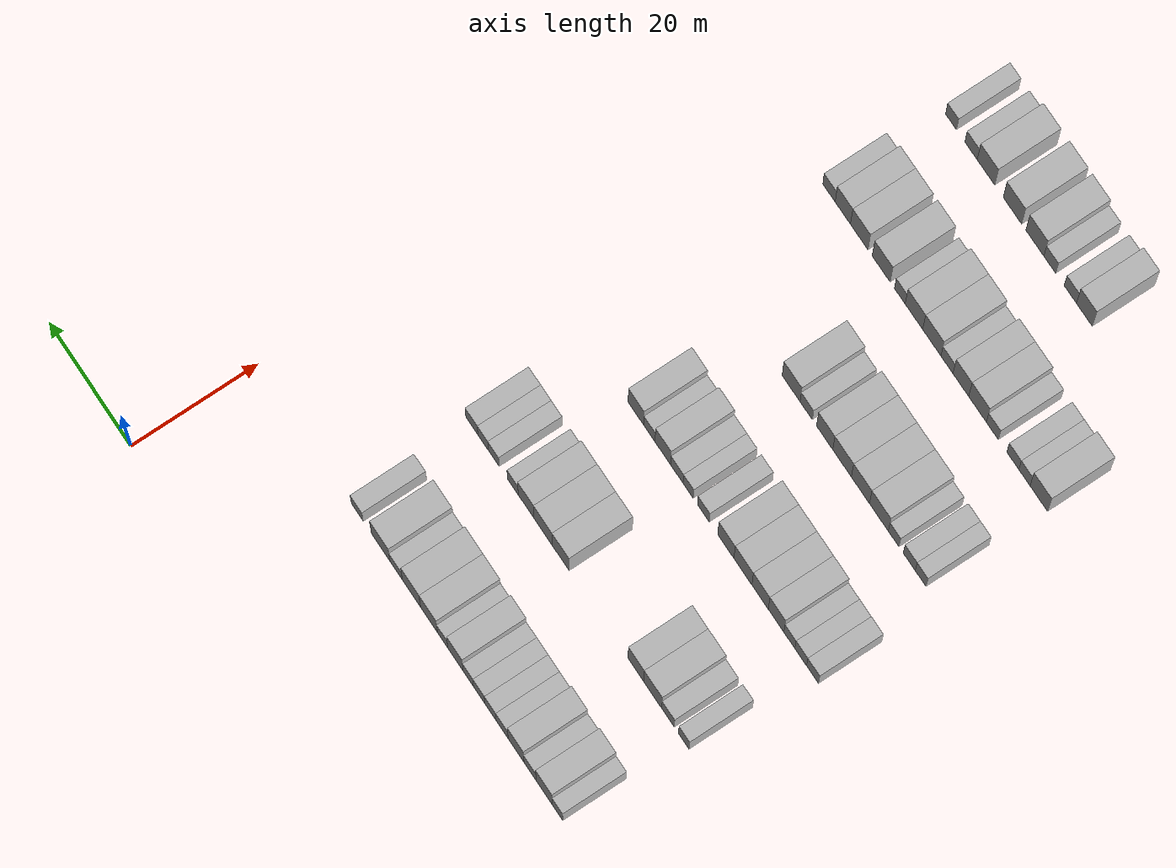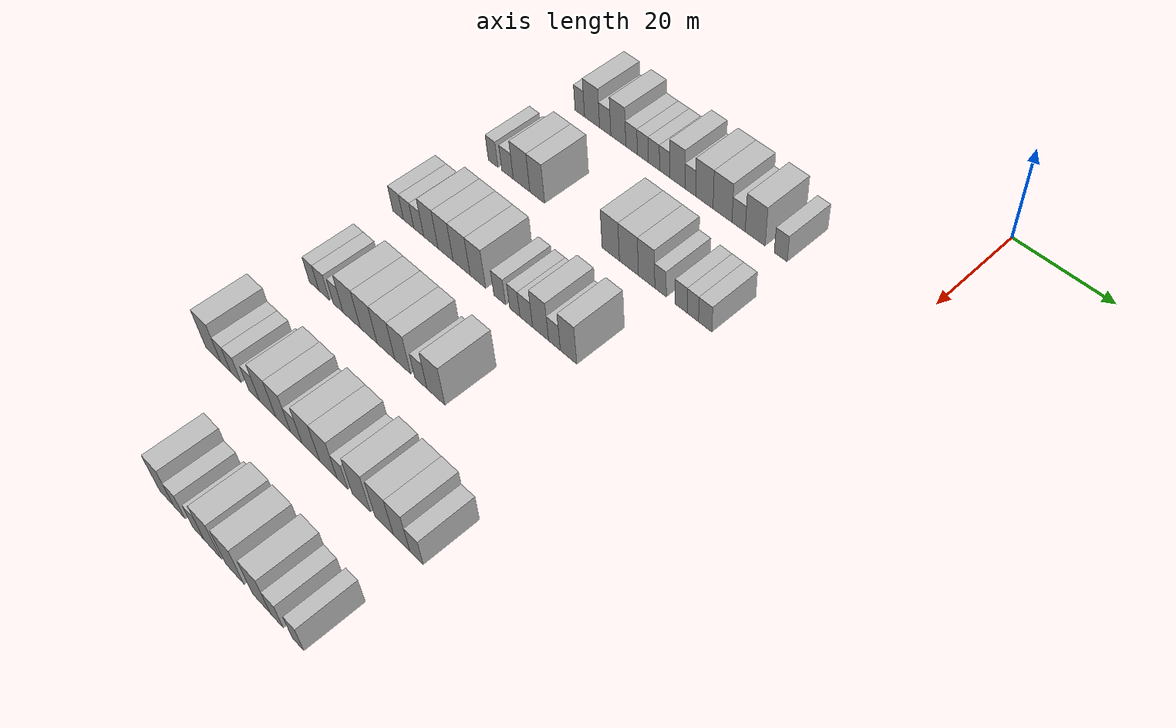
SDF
<sdf version="1.6">
 <world name="default">
  <model name="building_70">
   <static>1</static>
   <pose>25.0000 -71.9398 0 0.000000 0.000000 0.000000</pose>
   <link name="link">
    <pose>0 0 3.00 0 0 0</pose>
    <collision name="collision"><geometry><box><size>10.0000 2.4733 6.0000</size></box></geometry></collision>
    <visual name="visual">
     <cast_shadows>0</cast_shadows>
     <geometry><box><size>10.0000 2.4733 6.0000</size></box></geometry>
     <material>
      <script>
       <uri>model://HANNAS_wall/materials/scripts</uri>
       <uri>model://HANNAS_wall/materials/textures</uri>
       <name>vrc/HANNAS_wall</name>
      </script>
     </material>
    </visual>
   </link>
  </model>
  <model name="building_71">
   <static>1</static>
   <pose>25.0000 -68.7679 0 0.000000 0.000000 0.000000</pose>
   <link name="link">
    <pose>0 0 4.50 0 0 0</pose>
    <collision name="collision"><geometry><box><size>10.0000 3.8706 9.0000</size></box></geometry></collision>
    <visual name="visual">
     <cast_shadows>0</cast_shadows>
     <geometry><box><size>10.0000 3.8706 9.0000</size></box></geometry>
     <material>
      <script>
       <uri>model://HANNAS_wall/materials/scripts</uri>
       <uri>model://HANNAS_wall/materials/textures</uri>
       <name>vrc/HANNAS_wall</name>
      </script>
     </material>
    </visual>
   </link>
  </model>
  <model name="building_72">
   <static>1</static>
   <pose>25.0000 -65.4041 0 0.000000 0.000000 0.000000</pose>
   <link name="link">
    <pose>0 0 3.00 0 0 0</pose>
    <collision name="collision"><geometry><box><size>10.0000 2.8571 6.0000</size></box></geometry></collision>
    <visual name="visual">
     <cast_shadows>0</cast_shadows>
     <geometry><box><size>10.0000 2.8571 6.0000</size></box></geometry>
     <material>
      <script>
       <uri>model://HANNAS_wall/materials/scripts</uri>
       <uri>model://HANNAS_wall/materials/textures</uri>
       <name>vrc/HANNAS_wall</name>
      </script>
     </material>
    </visual>
   </link>
  </model>
  <model name="building_73">
   <static>1</static>
   <pose>25.0000 -62.0879 0 0.000000 0.000000 0.000000</pose>
   <link name="link">
    <pose>0 0 4.50 0 0 0</pose>
    <collision name="collision"><geometry><box><size>10.0000 3.7752 9.0000</size></box></geometry></collision>
    <visual name="visual">
     <cast_shadows>0</cast_shadows>
     <geometry><box><size>10.0000 3.7752 9.0000</size></box></geometry>
     <material>
      <script>
       <uri>model://HANNAS_wall/materials/scripts</uri>
       <uri>model://HANNAS_wall/materials/textures</uri>
       <name>vrc/HANNAS_wall</name>
      </script>
     </material>
    </visual>
   </link>
  </model>
  <model name="building_74">
   <static>1</static>
   <pose>25.0000 -58.7655 0 0.000000 0.000000 0.000000</pose>
   <link name="link">
    <pose>0 0 3.00 0 0 0</pose>
    <collision name="collision"><geometry><box><size>10.0000 2.8698 6.0000</size></box></geometry></collision>
    <visual name="visual">
     <cast_shadows>0</cast_shadows>
     <geometry><box><size>10.0000 2.8698 6.0000</size></box></geometry>
     <material>
      <script>
       <uri>model://HANNAS_wall/materials/scripts</uri>
       <uri>model://HANNAS_wall/materials/textures</uri>
       <name>vrc/HANNAS_wall</name>
      </script>
     </material>
    </visual>
   </link>
  </model>
  <model name="building_75">
   <static>1</static>
   <pose>25.0000 -55.9887 0 0.000000 0.000000 0.000000</pose>
   <link name="link">
    <pose>0 0 3.00 0 0 0</pose>
    <collision name="collision"><geometry><box><size>10.0000 2.6839 6.0000</size></box></geometry></collision>
    <visual name="visual">
     <cast_shadows>0</cast_shadows>
     <geometry><box><size>10.0000 2.6839 6.0000</size></box></geometry>
     <material>
      <script>
       <uri>model://HANNAS_wall/materials/scripts</uri>
       <uri>model://HANNAS_wall/materials/textures</uri>
       <name>vrc/HANNAS_wall</name>
      </script>
     </material>
    </visual>
   </link>
  </model>
  <model name="building_76">
   <static>1</static>
   <pose>25.0000 -53.2830 0 0.000000 0.000000 0.000000</pose>
   <link name="link">
    <pose>0 0 3.00 0 0 0</pose>
    <collision name="collision"><geometry><box><size>10.0000 2.7275 6.0000</size></box></geometry></collision>
    <visual name="visual">
     <cast_shadows>0</cast_shadows>
     <geometry><box><size>10.0000 2.7275 6.0000</size></box></geometry>
     <material>
      <script>
       <uri>model://HANNAS_wall/materials/scripts</uri>
       <uri>model://HANNAS_wall/materials/textures</uri>
       <name>vrc/HANNAS_wall</name>
      </script>
     </material>
    </visual>
   </link>
  </model>
  <model name="building_77">
   <static>1</static>
   <pose>25.0000 -50.6937 0 0.000000 0.000000 0.000000</pose>
   <link name="link">
    <pose>0 0 3.00 0 0 0</pose>
    <collision name="collision"><geometry><box><size>10.0000 2.4512 6.0000</size></box></geometry></collision>
    <visual name="visual">
     <cast_shadows>0</cast_shadows>
     <geometry><box><size>10.0000 2.4512 6.0000</size></box></geometry>
     <material>
      <script>
       <uri>model://HANNAS_wall/materials/scripts</uri>
       <uri>model://HANNAS_wall/materials/textures</uri>
       <name>vrc/HANNAS_wall</name>
      </script>
     </material>
    </visual>
   </link>
  </model>
  <model name="building_78">
   <static>1</static>
   <pose>25.0000 -47.6347 0 0.000000 0.000000 0.000000</pose>
   <link name="link">
    <pose>0 0 4.50 0 0 0</pose>
    <collision name="collision"><geometry><box><size>10.0000 3.6666 9.0000</size></box></geometry></collision>
    <visual name="visual">
     <cast_shadows>0</cast_shadows>
     <geometry><box><size>10.0000 3.6666 9.0000</size></box></geometry>
     <material>
      <script>
       <uri>model://HANNAS_wall/materials/scripts</uri>
       <uri>model://HANNAS_wall/materials/textures</uri>
       <name>vrc/HANNAS_wall</name>
      </script>
     </material>
    </visual>
   </link>
  </model>
  <model name="building_79">
   <static>1</static>
   <pose>25.0000 -44.5523 0 0.000000 0.000000 0.000000</pose>
   <link name="link">
    <pose>0 0 3.00 0 0 0</pose>
    <collision name="collision"><geometry><box><size>10.0000 2.4983 6.0000</size></box></geometry></collision>
    <visual name="visual">
     <cast_shadows>0</cast_shadows>
     <geometry><box><size>10.0000 2.4983 6.0000</size></box></geometry>
     <material>
      <script>
       <uri>model://HANNAS_wall/materials/scripts</uri>
       <uri>model://HANNAS_wall/materials/textures</uri>
       <name>vrc/HANNAS_wall</name>
      </script>
     </material>
    </visual>
   </link>
  </model>
  <model name="building_80">
   <static>1</static>
   <pose>25.0000 -41.2727 0 0.000000 0.000000 0.000000</pose>
   <link name="link">
    <pose>0 0 4.50 0 0 0</pose>
    <collision name="collision"><geometry><box><size>10.0000 4.0609 9.0000</size></box></geometry></collision>
    <visual name="visual">
     <cast_shadows>0</cast_shadows>
     <geometry><box><size>10.0000 4.0609 9.0000</size></box></geometry>
     <material>
      <script>
       <uri>model://HANNAS_wall/materials/scripts</uri>
       <uri>model://HANNAS_wall/materials/textures</uri>
       <name>vrc/HANNAS_wall</name>
      </script>
     </material>
    </visual>
   </link>
  </model>
  <model name="building_81">
   <static>1</static>
   <pose>25.0000 -37.0720 0 0.000000 0.000000 0.000000</pose>
   <link name="link">
    <pose>0 0 4.50 0 0 0</pose>
    <collision name="collision"><geometry><box><size>10.0000 4.3405 9.0000</size></box></geometry></collision>
    <visual name="visual">
     <cast_shadows>0</cast_shadows>
     <geometry><box><size>10.0000 4.3405 9.0000</size></box></geometry>
     <material>
      <script>
       <uri>model://HANNAS_wall/materials/scripts</uri>
       <uri>model://HANNAS_wall/materials/textures</uri>
       <name>vrc/HANNAS_wall</name>
      </script>
     </material>
    </visual>
   </link>
  </model>
  <model name="building_82">
   <static>1</static>
   <pose>25.0000 -33.4084 0 0.000000 0.000000 0.000000</pose>
   <link name="link">
    <pose>0 0 3.00 0 0 0</pose>
    <collision name="collision"><geometry><box><size>10.0000 2.9866 6.0000</size></box></geometry></collision>
    <visual name="visual">
     <cast_shadows>0</cast_shadows>
     <geometry><box><size>10.0000 2.9866 6.0000</size></box></geometry>
     <material>
      <script>
       <uri>model://HANNAS_wall/materials/scripts</uri>
       <uri>model://HANNAS_wall/materials/textures</uri>
       <name>vrc/HANNAS_wall</name>
      </script>
     </material>
    </visual>
   </link>
  </model>
  <model name="building_83">
   <static>1</static>
   <pose>25.0000 -29.6870 0 0.000000 0.000000 0.000000</pose>
   <link name="link">
    <pose>0 0 4.50 0 0 0</pose>
    <collision name="collision"><geometry><box><size>10.0000 4.4562 9.0000</size></box></geometry></collision>
    <visual name="visual">
     <cast_shadows>0</cast_shadows>
     <geometry><box><size>10.0000 4.4562 9.0000</size></box></geometry>
     <material>
      <script>
       <uri>model://HANNAS_wall/materials/scripts</uri>
       <uri>model://HANNAS_wall/materials/textures</uri>
       <name>vrc/HANNAS_wall</name>
      </script>
     </material>
    </visual>
   </link>
  </model>
  <model name="building_84">
   <static>1</static>
   <pose>25.0000 -24.0483 0 0.000000 0.000000 0.000000</pose>
   <link name="link">
    <pose>0 0 3.00 0 0 0</pose>
    <collision name="collision"><geometry><box><size>10.0000 2.8212 6.0000</size></box></geometry></collision>
    <visual name="visual">
     <cast_shadows>0</cast_shadows>
     <geometry><box><size>10.0000 2.8212 6.0000</size></box></geometry>
     <material>
      <script>
       <uri>model://HANNAS_wall/materials/scripts</uri>
       <uri>model://HANNAS_wall/materials/textures</uri>
       <name>vrc/HANNAS_wall</name>
      </script>
     </material>
    </visual>
   </link>
  </model>
  <model name="building_245">
   <static>1</static>
   <pose>44.0000 -73.2101 0 0.000000 0.000000 0.000000</pose>
   <link name="link">
    <pose>0 0 3.00 0 0 0</pose>
    <collision name="collision"><geometry><box><size>10.0000 2.5110 6.0000</size></box></geometry></collision>
    <visual name="visual">
     <cast_shadows>0</cast_shadows>
     <geometry><box><size>10.0000 2.5110 6.0000</size></box></geometry>
     <material>
      <script>
       <uri>model://HANNAS_wall/materials/scripts</uri>
       <uri>model://HANNAS_wall/materials/textures</uri>
       <name>vrc/HANNAS_wall</name>
      </script>
     </material>
    </visual>
   </link>
  </model>
  <model name="building_246">
   <static>1</static>
   <pose>44.0000 -69.4684 0 0.000000 0.000000 0.000000</pose>
   <link name="link">
    <pose>0 0 3.00 0 0 0</pose>
    <collision name="collision"><geometry><box><size>10.0000 2.9724 6.0000</size></box></geometry></collision>
    <visual name="visual">
     <cast_shadows>0</cast_shadows>
     <geometry><box><size>10.0000 2.9724 6.0000</size></box></geometry>
     <material>
      <script>
       <uri>model://HANNAS_wall/materials/scripts</uri>
       <uri>model://HANNAS_wall/materials/textures</uri>
       <name>vrc/HANNAS_wall</name>
      </script>
     </material>
    </visual>
   </link>
  </model>
  <model name="building_247">
   <static>1</static>
   <pose>44.0000 -65.8540 0 0.000000 0.000000 0.000000</pose>
   <link name="link">
    <pose>0 0 4.50 0 0 0</pose>
    <collision name="collision"><geometry><box><size>10.0000 4.2565 9.0000</size></box></geometry></collision>
    <visual name="visual">
     <cast_shadows>0</cast_shadows>
     <geometry><box><size>10.0000 4.2565 9.0000</size></box></geometry>
     <material>
      <script>
       <uri>model://HANNAS_wall/materials/scripts</uri>
       <uri>model://HANNAS_wall/materials/textures</uri>
       <name>vrc/HANNAS_wall</name>
      </script>
     </material>
    </visual>
   </link>
  </model>
  <model name="building_248">
   <static>1</static>
   <pose>44.0000 -61.8685 0 0.000000 0.000000 0.000000</pose>
   <link name="link">
    <pose>0 0 4.50 0 0 0</pose>
    <collision name="collision"><geometry><box><size>10.0000 3.7145 9.0000</size></box></geometry></collision>
    <visual name="visual">
     <cast_shadows>0</cast_shadows>
     <geometry><box><size>10.0000 3.7145 9.0000</size></box></geometry>
     <material>
      <script>
       <uri>model://HANNAS_wall/materials/scripts</uri>
       <uri>model://HANNAS_wall/materials/textures</uri>
       <name>vrc/HANNAS_wall</name>
      </script>
     </material>
    </visual>
   </link>
  </model>
  <model name="building_249">
   <static>1</static>
   <pose>44.0000 -43.9465 0 0.000000 0.000000 0.000000</pose>
   <link name="link">
    <pose>0 0 4.50 0 0 0</pose>
    <collision name="collision"><geometry><box><size>10.0000 4.0432 9.0000</size></box></geometry></collision>
    <visual name="visual">
     <cast_shadows>0</cast_shadows>
     <geometry><box><size>10.0000 4.0432 9.0000</size></box></geometry>
     <material>
      <script>
       <uri>model://HANNAS_wall/materials/scripts</uri>
       <uri>model://HANNAS_wall/materials/textures</uri>
       <name>vrc/HANNAS_wall</name>
      </script>
     </material>
    </visual>
   </link>
  </model>
  <model name="building_250">
   <static>1</static>
   <pose>44.0000 -39.7288 0 0.000000 0.000000 0.000000</pose>
   <link name="link">
    <pose>0 0 4.50 0 0 0</pose>
    <collision name="collision"><geometry><box><size>10.0000 4.3920 9.0000</size></box></geometry></collision>
    <visual name="visual">
     <cast_shadows>0</cast_shadows>
     <geometry><box><size>10.0000 4.3920 9.0000</size></box></geometry>
     <material>
      <script>
       <uri>model://HANNAS_wall/materials/scripts</uri>
       <uri>model://HANNAS_wall/materials/textures</uri>
       <name>vrc/HANNAS_wall</name>
      </script>
     </material>
    </visual>
   </link>
  </model>
  <model name="building_251">
   <static>1</static>
   <pose>44.0000 -35.6604 0 0.000000 0.000000 0.000000</pose>
   <link name="link">
    <pose>0 0 4.50 0 0 0</pose>
    <collision name="collision"><geometry><box><size>10.0000 3.7448 9.0000</size></box></geometry></collision>
    <visual name="visual">
     <cast_shadows>0</cast_shadows>
     <geometry><box><size>10.0000 3.7448 9.0000</size></box></geometry>
     <material>
      <script>
       <uri>model://HANNAS_wall/materials/scripts</uri>
       <uri>model://HANNAS_wall/materials/textures</uri>
       <name>vrc/HANNAS_wall</name>
      </script>
     </material>
    </visual>
   </link>
  </model>
  <model name="building_252">
   <static>1</static>
   <pose>44.0000 -32.4972 0 0.000000 0.000000 0.000000</pose>
   <link name="link">
    <pose>0 0 3.00 0 0 0</pose>
    <collision name="collision"><geometry><box><size>10.0000 2.5817 6.0000</size></box></geometry></collision>
    <visual name="visual">
     <cast_shadows>0</cast_shadows>
     <geometry><box><size>10.0000 2.5817 6.0000</size></box></geometry>
     <material>
      <script>
       <uri>model://HANNAS_wall/materials/scripts</uri>
       <uri>model://HANNAS_wall/materials/textures</uri>
       <name>vrc/HANNAS_wall</name>
      </script>
     </material>
    </visual>
   </link>
  </model>
  <model name="building_253">
   <static>1</static>
   <pose>44.0000 -27.9006 0 0.000000 0.000000 0.000000</pose>
   <link name="link">
    <pose>0 0 3.00 0 0 0</pose>
    <collision name="collision"><geometry><box><size>10.0000 2.6114 6.0000</size></box></geometry></collision>
    <visual name="visual">
     <cast_shadows>0</cast_shadows>
     <geometry><box><size>10.0000 2.6114 6.0000</size></box></geometry>
     <material>
      <script>
       <uri>model://HANNAS_wall/materials/scripts</uri>
       <uri>model://HANNAS_wall/materials/textures</uri>
       <name>vrc/HANNAS_wall</name>
      </script>
     </material>
    </visual>
   </link>
  </model>
  <model name="building_254">
   <static>1</static>
   <pose>44.0000 -25.3460 0 0.000000 0.000000 0.000000</pose>
   <link name="link">
    <pose>0 0 3.00 0 0 0</pose>
    <collision name="collision"><geometry><box><size>10.0000 2.4978 6.0000</size></box></geometry></collision>
    <visual name="visual">
     <cast_shadows>0</cast_shadows>
     <geometry><box><size>10.0000 2.4978 6.0000</size></box></geometry>
     <material>
      <script>
       <uri>model://HANNAS_wall/materials/scripts</uri>
       <uri>model://HANNAS_wall/materials/textures</uri>
       <name>vrc/HANNAS_wall</name>
      </script>
     </material>
    </visual>
   </link>
  </model>
  <model name="building_255">
   <static>1</static>
   <pose>44.0000 -22.6495 0 0.000000 0.000000 0.000000</pose>
   <link name="link">
    <pose>0 0 3.00 0 0 0</pose>
    <collision name="collision"><geometry><box><size>10.0000 2.8953 6.0000</size></box></geometry></collision>
    <visual name="visual">
     <cast_shadows>0</cast_shadows>
     <geometry><box><size>10.0000 2.8953 6.0000</size></box></geometry>
     <material>
      <script>
       <uri>model://HANNAS_wall/materials/scripts</uri>
       <uri>model://HANNAS_wall/materials/textures</uri>
       <name>vrc/HANNAS_wall</name>
      </script>
     </material>
    </visual>
   </link>
  </model>
  <model name="building_421">
   <static>1</static>
   <pose>63.0000 -75.1729 0 0.000000 0.000000 0.000000</pose>
   <link name="link">
    <pose>0 0 3.00 0 0 0</pose>
    <collision name="collision"><geometry><box><size>10.0000 2.8342 6.0000</size></box></geometry></collision>
    <visual name="visual">
     <cast_shadows>0</cast_shadows>
     <geometry><box><size>10.0000 2.8342 6.0000</size></box></geometry>
     <material>
      <script>
       <uri>model://HANNAS_wall/materials/scripts</uri>
       <uri>model://HANNAS_wall/materials/textures</uri>
       <name>vrc/HANNAS_wall</name>
      </script>
     </material>
    </visual>
   </link>
  </model>
  <model name="building_422">
   <static>1</static>
   <pose>63.0000 -72.3834 0 0.000000 0.000000 0.000000</pose>
   <link name="link">
    <pose>0 0 3.00 0 0 0</pose>
    <collision name="collision"><geometry><box><size>10.0000 2.7446 6.0000</size></box></geometry></collision>
    <visual name="visual">
     <cast_shadows>0</cast_shadows>
     <geometry><box><size>10.0000 2.7446 6.0000</size></box></geometry>
     <material>
      <script>
       <uri>model://HANNAS_wall/materials/scripts</uri>
       <uri>model://HANNAS_wall/materials/textures</uri>
       <name>vrc/HANNAS_wall</name>
      </script>
     </material>
    </visual>
   </link>
  </model>
  <model name="building_423">
   <static>1</static>
   <pose>63.0000 -69.7087 0 0.000000 0.000000 0.000000</pose>
   <link name="link">
    <pose>0 0 3.00 0 0 0</pose>
    <collision name="collision"><geometry><box><size>10.0000 2.6048 6.0000</size></box></geometry></collision>
    <visual name="visual">
     <cast_shadows>0</cast_shadows>
     <geometry><box><size>10.0000 2.6048 6.0000</size></box></geometry>
     <material>
      <script>
       <uri>model://HANNAS_wall/materials/scripts</uri>
       <uri>model://HANNAS_wall/materials/textures</uri>
       <name>vrc/HANNAS_wall</name>
      </script>
     </material>
    </visual>
   </link>
  </model>
  <model name="building_424">
   <static>1</static>
   <pose>63.0000 -66.5610 0 0.000000 0.000000 0.000000</pose>
   <link name="link">
    <pose>0 0 4.50 0 0 0</pose>
    <collision name="collision"><geometry><box><size>10.0000 3.6906 9.0000</size></box></geometry></collision>
    <visual name="visual">
     <cast_shadows>0</cast_shadows>
     <geometry><box><size>10.0000 3.6906 9.0000</size></box></geometry>
     <material>
      <script>
       <uri>model://HANNAS_wall/materials/scripts</uri>
       <uri>model://HANNAS_wall/materials/textures</uri>
       <name>vrc/HANNAS_wall</name>
      </script>
     </material>
    </visual>
   </link>
  </model>
  <model name="building_425">
   <static>1</static>
   <pose>63.0000 -62.7786 0 0.000000 0.000000 0.000000</pose>
   <link name="link">
    <pose>0 0 4.50 0 0 0</pose>
    <collision name="collision"><geometry><box><size>10.0000 3.8744 9.0000</size></box></geometry></collision>
    <visual name="visual">
     <cast_shadows>0</cast_shadows>
     <geometry><box><size>10.0000 3.8744 9.0000</size></box></geometry>
     <material>
      <script>
       <uri>model://HANNAS_wall/materials/scripts</uri>
       <uri>model://HANNAS_wall/materials/textures</uri>
       <name>vrc/HANNAS_wall</name>
      </script>
     </material>
    </visual>
   </link>
  </model>
  <model name="building_426">
   <static>1</static>
   <pose>63.0000 -58.7108 0 0.000000 0.000000 0.000000</pose>
   <link name="link">
    <pose>0 0 4.50 0 0 0</pose>
    <collision name="collision"><geometry><box><size>10.0000 4.2612 9.0000</size></box></geometry></collision>
    <visual name="visual">
     <cast_shadows>0</cast_shadows>
     <geometry><box><size>10.0000 4.2612 9.0000</size></box></geometry>
     <material>
      <script>
       <uri>model://HANNAS_wall/materials/scripts</uri>
       <uri>model://HANNAS_wall/materials/textures</uri>
       <name>vrc/HANNAS_wall</name>
      </script>
     </material>
    </visual>
   </link>
  </model>
  <model name="building_427">
   <static>1</static>
   <pose>63.0000 -54.6644 0 0.000000 0.000000 0.000000</pose>
   <link name="link">
    <pose>0 0 4.50 0 0 0</pose>
    <collision name="collision"><geometry><box><size>10.0000 3.8317 9.0000</size></box></geometry></collision>
    <visual name="visual">
     <cast_shadows>0</cast_shadows>
     <geometry><box><size>10.0000 3.8317 9.0000</size></box></geometry>
     <material>
      <script>
       <uri>model://HANNAS_wall/materials/scripts</uri>
       <uri>model://HANNAS_wall/materials/textures</uri>
       <name>vrc/HANNAS_wall</name>
      </script>
     </material>
    </visual>
   </link>
  </model>
  <model name="building_428">
   <static>1</static>
   <pose>63.0000 -49.3367 0 0.000000 0.000000 0.000000</pose>
   <link name="link">
    <pose>0 0 3.00 0 0 0</pose>
    <collision name="collision"><geometry><box><size>10.0000 2.8236 6.0000</size></box></geometry></collision>
    <visual name="visual">
     <cast_shadows>0</cast_shadows>
     <geometry><box><size>10.0000 2.8236 6.0000</size></box></geometry>
     <material>
      <script>
       <uri>model://HANNAS_wall/materials/scripts</uri>
       <uri>model://HANNAS_wall/materials/textures</uri>
       <name>vrc/HANNAS_wall</name>
      </script>
     </material>
    </visual>
   </link>
  </model>
  <model name="building_429">
   <static>1</static>
   <pose>63.0000 -45.7119 0 0.000000 0.000000 0.000000</pose>
   <link name="link">
    <pose>0 0 3.00 0 0 0</pose>
    <collision name="collision"><geometry><box><size>10.0000 2.4261 6.0000</size></box></geometry></collision>
    <visual name="visual">
     <cast_shadows>0</cast_shadows>
     <geometry><box><size>10.0000 2.4261 6.0000</size></box></geometry>
     <material>
      <script>
       <uri>model://HANNAS_wall/materials/scripts</uri>
       <uri>model://HANNAS_wall/materials/textures</uri>
       <name>vrc/HANNAS_wall</name>
      </script>
     </material>
    </visual>
   </link>
  </model>
  <model name="building_430">
   <static>1</static>
   <pose>63.0000 -43.0051 0 0.000000 0.000000 0.000000</pose>
   <link name="link">
    <pose>0 0 3.00 0 0 0</pose>
    <collision name="collision"><geometry><box><size>10.0000 2.9874 6.0000</size></box></geometry></collision>
    <visual name="visual">
     <cast_shadows>0</cast_shadows>
     <geometry><box><size>10.0000 2.9874 6.0000</size></box></geometry>
     <material>
      <script>
       <uri>model://HANNAS_wall/materials/scripts</uri>
       <uri>model://HANNAS_wall/materials/textures</uri>
       <name>vrc/HANNAS_wall</name>
      </script>
     </material>
    </visual>
   </link>
  </model>
  <model name="building_431">
   <static>1</static>
   <pose>63.0000 -39.6616 0 0.000000 0.000000 0.000000</pose>
   <link name="link">
    <pose>0 0 4.50 0 0 0</pose>
    <collision name="collision"><geometry><box><size>10.0000 3.6996 9.0000</size></box></geometry></collision>
    <visual name="visual">
     <cast_shadows>0</cast_shadows>
     <geometry><box><size>10.0000 3.6996 9.0000</size></box></geometry>
     <material>
      <script>
       <uri>model://HANNAS_wall/materials/scripts</uri>
       <uri>model://HANNAS_wall/materials/textures</uri>
       <name>vrc/HANNAS_wall</name>
      </script>
     </material>
    </visual>
   </link>
  </model>
  <model name="building_432">
   <static>1</static>
   <pose>63.0000 -36.4621 0 0.000000 0.000000 0.000000</pose>
   <link name="link">
    <pose>0 0 3.00 0 0 0</pose>
    <collision name="collision"><geometry><box><size>10.0000 2.6994 6.0000</size></box></geometry></collision>
    <visual name="visual">
     <cast_shadows>0</cast_shadows>
     <geometry><box><size>10.0000 2.6994 6.0000</size></box></geometry>
     <material>
      <script>
       <uri>model://HANNAS_wall/materials/scripts</uri>
       <uri>model://HANNAS_wall/materials/textures</uri>
       <name>vrc/HANNAS_wall</name>
      </script>
     </material>
    </visual>
   </link>
  </model>
  <model name="building_433">
   <static>1</static>
   <pose>63.0000 -33.2573 0 0.000000 0.000000 0.000000</pose>
   <link name="link">
    <pose>0 0 4.50 0 0 0</pose>
    <collision name="collision"><geometry><box><size>10.0000 3.7102 9.0000</size></box></geometry></collision>
    <visual name="visual">
     <cast_shadows>0</cast_shadows>
     <geometry><box><size>10.0000 3.7102 9.0000</size></box></geometry>
     <material>
      <script>
       <uri>model://HANNAS_wall/materials/scripts</uri>
       <uri>model://HANNAS_wall/materials/textures</uri>
       <name>vrc/HANNAS_wall</name>
      </script>
     </material>
    </visual>
   </link>
  </model>
  <model name="building_595">
   <static>1</static>
   <pose>82.0000 -72.4162 0 0.000000 0.000000 0.000000</pose>
   <link name="link">
    <pose>0 0 3.00 0 0 0</pose>
    <collision name="collision"><geometry><box><size>10.0000 2.5348 6.0000</size></box></geometry></collision>
    <visual name="visual">
     <cast_shadows>0</cast_shadows>
     <geometry><box><size>10.0000 2.5348 6.0000</size></box></geometry>
     <material>
      <script>
       <uri>model://HANNAS_wall/materials/scripts</uri>
       <uri>model://HANNAS_wall/materials/textures</uri>
       <name>vrc/HANNAS_wall</name>
      </script>
     </material>
    </visual>
   </link>
  </model>
  <model name="building_596">
   <static>1</static>
   <pose>82.0000 -69.7311 0 0.000000 0.000000 0.000000</pose>
   <link name="link">
    <pose>0 0 3.00 0 0 0</pose>
    <collision name="collision"><geometry><box><size>10.0000 2.8354 6.0000</size></box></geometry></collision>
    <visual name="visual">
     <cast_shadows>0</cast_shadows>
     <geometry><box><size>10.0000 2.8354 6.0000</size></box></geometry>
     <material>
      <script>
       <uri>model://HANNAS_wall/materials/scripts</uri>
       <uri>model://HANNAS_wall/materials/textures</uri>
       <name>vrc/HANNAS_wall</name>
      </script>
     </material>
    </visual>
   </link>
  </model>
  <model name="building_597">
   <static>1</static>
   <pose>82.0000 -66.0479 0 0.000000 0.000000 0.000000</pose>
   <link name="link">
    <pose>0 0 3.00 0 0 0</pose>
    <collision name="collision"><geometry><box><size>10.0000 2.5312 6.0000</size></box></geometry></collision>
    <visual name="visual">
     <cast_shadows>0</cast_shadows>
     <geometry><box><size>10.0000 2.5312 6.0000</size></box></geometry>
     <material>
      <script>
       <uri>model://HANNAS_wall/materials/scripts</uri>
       <uri>model://HANNAS_wall/materials/textures</uri>
       <name>vrc/HANNAS_wall</name>
      </script>
     </material>
    </visual>
   </link>
  </model>
  <model name="building_598">
   <static>1</static>
   <pose>82.0000 -62.5559 0 0.000000 0.000000 0.000000</pose>
   <link name="link">
    <pose>0 0 4.50 0 0 0</pose>
    <collision name="collision"><geometry><box><size>10.0000 4.4528 9.0000</size></box></geometry></collision>
    <visual name="visual">
     <cast_shadows>0</cast_shadows>
     <geometry><box><size>10.0000 4.4528 9.0000</size></box></geometry>
     <material>
      <script>
       <uri>model://HANNAS_wall/materials/scripts</uri>
       <uri>model://HANNAS_wall/materials/textures</uri>
       <name>vrc/HANNAS_wall</name>
      </script>
     </material>
    </visual>
   </link>
  </model>
  <model name="building_599">
   <static>1</static>
   <pose>82.0000 -58.1905 0 0.000000 0.000000 0.000000</pose>
   <link name="link">
    <pose>0 0 4.50 0 0 0</pose>
    <collision name="collision"><geometry><box><size>10.0000 4.2779 9.0000</size></box></geometry></collision>
    <visual name="visual">
     <cast_shadows>0</cast_shadows>
     <geometry><box><size>10.0000 4.2779 9.0000</size></box></geometry>
     <material>
      <script>
       <uri>model://HANNAS_wall/materials/scripts</uri>
       <uri>model://HANNAS_wall/materials/textures</uri>
       <name>vrc/HANNAS_wall</name>
      </script>
     </material>
    </visual>
   </link>
  </model>
  <model name="building_600">
   <static>1</static>
   <pose>82.0000 -53.8504 0 0.000000 0.000000 0.000000</pose>
   <link name="link">
    <pose>0 0 4.50 0 0 0</pose>
    <collision name="collision"><geometry><box><size>10.0000 4.4025 9.0000</size></box></geometry></collision>
    <visual name="visual">
     <cast_shadows>0</cast_shadows>
     <geometry><box><size>10.0000 4.4025 9.0000</size></box></geometry>
     <material>
      <script>
       <uri>model://HANNAS_wall/materials/scripts</uri>
       <uri>model://HANNAS_wall/materials/textures</uri>
       <name>vrc/HANNAS_wall</name>
      </script>
     </material>
    </visual>
   </link>
  </model>
  <model name="building_601">
   <static>1</static>
   <pose>82.0000 -49.7331 0 0.000000 0.000000 0.000000</pose>
   <link name="link">
    <pose>0 0 4.50 0 0 0</pose>
    <collision name="collision"><geometry><box><size>10.0000 3.8321 9.0000</size></box></geometry></collision>
    <visual name="visual">
     <cast_shadows>0</cast_shadows>
     <geometry><box><size>10.0000 3.8321 9.0000</size></box></geometry>
     <material>
      <script>
       <uri>model://HANNAS_wall/materials/scripts</uri>
       <uri>model://HANNAS_wall/materials/textures</uri>
       <name>vrc/HANNAS_wall</name>
      </script>
     </material>
    </visual>
   </link>
  </model>
  <model name="building_602">
   <static>1</static>
   <pose>82.0000 -45.3553 0 0.000000 0.000000 0.000000</pose>
   <link name="link">
    <pose>0 0 3.00 0 0 0</pose>
    <collision name="collision"><geometry><box><size>10.0000 2.9236 6.0000</size></box></geometry></collision>
    <visual name="visual">
     <cast_shadows>0</cast_shadows>
     <geometry><box><size>10.0000 2.9236 6.0000</size></box></geometry>
     <material>
      <script>
       <uri>model://HANNAS_wall/materials/scripts</uri>
       <uri>model://HANNAS_wall/materials/textures</uri>
       <name>vrc/HANNAS_wall</name>
      </script>
     </material>
    </visual>
   </link>
  </model>
  <model name="building_603">
   <static>1</static>
   <pose>82.0000 -41.7705 0 0.000000 0.000000 0.000000</pose>
   <link name="link">
    <pose>0 0 4.50 0 0 0</pose>
    <collision name="collision"><geometry><box><size>10.0000 4.2459 9.0000</size></box></geometry></collision>
    <visual name="visual">
     <cast_shadows>0</cast_shadows>
     <geometry><box><size>10.0000 4.2459 9.0000</size></box></geometry>
     <material>
      <script>
       <uri>model://HANNAS_wall/materials/scripts</uri>
       <uri>model://HANNAS_wall/materials/textures</uri>
       <name>vrc/HANNAS_wall</name>
      </script>
     </material>
    </visual>
   </link>
  </model>
  <model name="building_765">
   <static>1</static>
   <pose>101.0000 -72.1455 0 0.000000 0.000000 0.000000</pose>
   <link name="link">
    <pose>0 0 4.50 0 0 0</pose>
    <collision name="collision"><geometry><box><size>10.0000 4.1239 9.0000</size></box></geometry></collision>
    <visual name="visual">
     <cast_shadows>0</cast_shadows>
     <geometry><box><size>10.0000 4.1239 9.0000</size></box></geometry>
     <material>
      <script>
       <uri>model://HANNAS_wall/materials/scripts</uri>
       <uri>model://HANNAS_wall/materials/textures</uri>
       <name>vrc/HANNAS_wall</name>
      </script>
     </material>
    </visual>
   </link>
  </model>
  <model name="building_766">
   <static>1</static>
   <pose>101.0000 -68.7598 0 0.000000 0.000000 0.000000</pose>
   <link name="link">
    <pose>0 0 3.00 0 0 0</pose>
    <collision name="collision"><geometry><box><size>10.0000 2.6475 6.0000</size></box></geometry></collision>
    <visual name="visual">
     <cast_shadows>0</cast_shadows>
     <geometry><box><size>10.0000 2.6475 6.0000</size></box></geometry>
     <material>
      <script>
       <uri>model://HANNAS_wall/materials/scripts</uri>
       <uri>model://HANNAS_wall/materials/textures</uri>
       <name>vrc/HANNAS_wall</name>
      </script>
     </material>
    </visual>
   </link>
  </model>
  <model name="building_767">
   <static>1</static>
   <pose>101.0000 -66.0366 0 0.000000 0.000000 0.000000</pose>
   <link name="link">
    <pose>0 0 3.00 0 0 0</pose>
    <collision name="collision"><geometry><box><size>10.0000 2.7990 6.0000</size></box></geometry></collision>
    <visual name="visual">
     <cast_shadows>0</cast_shadows>
     <geometry><box><size>10.0000 2.7990 6.0000</size></box></geometry>
     <material>
      <script>
       <uri>model://HANNAS_wall/materials/scripts</uri>
       <uri>model://HANNAS_wall/materials/textures</uri>
       <name>vrc/HANNAS_wall</name>
      </script>
     </material>
    </visual>
   </link>
  </model>
  <model name="building_768">
   <static>1</static>
   <pose>101.0000 -61.2199 0 0.000000 0.000000 0.000000</pose>
   <link name="link">
    <pose>0 0 3.00 0 0 0</pose>
    <collision name="collision"><geometry><box><size>10.0000 2.8343 6.0000</size></box></geometry></collision>
    <visual name="visual">
     <cast_shadows>0</cast_shadows>
     <geometry><box><size>10.0000 2.8343 6.0000</size></box></geometry>
     <material>
      <script>
       <uri>model://HANNAS_wall/materials/scripts</uri>
       <uri>model://HANNAS_wall/materials/textures</uri>
       <name>vrc/HANNAS_wall</name>
      </script>
     </material>
    </visual>
   </link>
  </model>
  <model name="building_769">
   <static>1</static>
   <pose>101.0000 -57.7214 0 0.000000 0.000000 0.000000</pose>
   <link name="link">
    <pose>0 0 4.50 0 0 0</pose>
    <collision name="collision"><geometry><box><size>10.0000 4.1626 9.0000</size></box></geometry></collision>
    <visual name="visual">
     <cast_shadows>0</cast_shadows>
     <geometry><box><size>10.0000 4.1626 9.0000</size></box></geometry>
     <material>
      <script>
       <uri>model://HANNAS_wall/materials/scripts</uri>
       <uri>model://HANNAS_wall/materials/textures</uri>
       <name>vrc/HANNAS_wall</name>
      </script>
     </material>
    </visual>
   </link>
  </model>
  <model name="building_770">
   <static>1</static>
   <pose>101.0000 -53.7893 0 0.000000 0.000000 0.000000</pose>
   <link name="link">
    <pose>0 0 4.50 0 0 0</pose>
    <collision name="collision"><geometry><box><size>10.0000 3.7018 9.0000</size></box></geometry></collision>
    <visual name="visual">
     <cast_shadows>0</cast_shadows>
     <geometry><box><size>10.0000 3.7018 9.0000</size></box></geometry>
     <material>
      <script>
       <uri>model://HANNAS_wall/materials/scripts</uri>
       <uri>model://HANNAS_wall/materials/textures</uri>
       <name>vrc/HANNAS_wall</name>
      </script>
     </material>
    </visual>
   </link>
  </model>
  <model name="building_771">
   <static>1</static>
   <pose>101.0000 -50.5029 0 0.000000 0.000000 0.000000</pose>
   <link name="link">
    <pose>0 0 3.00 0 0 0</pose>
    <collision name="collision"><geometry><box><size>10.0000 2.8710 6.0000</size></box></geometry></collision>
    <visual name="visual">
     <cast_shadows>0</cast_shadows>
     <geometry><box><size>10.0000 2.8710 6.0000</size></box></geometry>
     <material>
      <script>
       <uri>model://HANNAS_wall/materials/scripts</uri>
       <uri>model://HANNAS_wall/materials/textures</uri>
       <name>vrc/HANNAS_wall</name>
      </script>
     </material>
    </visual>
   </link>
  </model>
  <model name="building_772">
   <static>1</static>
   <pose>101.0000 -46.9068 0 0.000000 0.000000 0.000000</pose>
   <link name="link">
    <pose>0 0 4.50 0 0 0</pose>
    <collision name="collision"><geometry><box><size>10.0000 4.3212 9.0000</size></box></geometry></collision>
    <visual name="visual">
     <cast_shadows>0</cast_shadows>
     <geometry><box><size>10.0000 4.3212 9.0000</size></box></geometry>
     <material>
      <script>
       <uri>model://HANNAS_wall/materials/scripts</uri>
       <uri>model://HANNAS_wall/materials/textures</uri>
       <name>vrc/HANNAS_wall</name>
      </script>
     </material>
    </visual>
   </link>
  </model>
  <model name="building_773">
   <static>1</static>
   <pose>101.0000 -42.6801 0 0.000000 0.000000 0.000000</pose>
   <link name="link">
    <pose>0 0 4.50 0 0 0</pose>
    <collision name="collision"><geometry><box><size>10.0000 4.1321 9.0000</size></box></geometry></collision>
    <visual name="visual">
     <cast_shadows>0</cast_shadows>
     <geometry><box><size>10.0000 4.1321 9.0000</size></box></geometry>
     <material>
      <script>
       <uri>model://HANNAS_wall/materials/scripts</uri>
       <uri>model://HANNAS_wall/materials/textures</uri>
       <name>vrc/HANNAS_wall</name>
      </script>
     </material>
    </visual>
   </link>
  </model>
  <model name="building_774">
   <static>1</static>
   <pose>101.0000 -39.3364 0 0.000000 0.000000 0.000000</pose>
   <link name="link">
    <pose>0 0 3.00 0 0 0</pose>
    <collision name="collision"><geometry><box><size>10.0000 2.5553 6.0000</size></box></geometry></collision>
    <visual name="visual">
     <cast_shadows>0</cast_shadows>
     <geometry><box><size>10.0000 2.5553 6.0000</size></box></geometry>
     <material>
      <script>
       <uri>model://HANNAS_wall/materials/scripts</uri>
       <uri>model://HANNAS_wall/materials/textures</uri>
       <name>vrc/HANNAS_wall</name>
      </script>
     </material>
    </visual>
   </link>
  </model>
  <model name="building_775">
   <static>1</static>
   <pose>101.0000 -34.9213 0 0.000000 0.000000 0.000000</pose>
   <link name="link">
    <pose>0 0 4.50 0 0 0</pose>
    <collision name="collision"><geometry><box><size>10.0000 4.2747 9.0000</size></box></geometry></collision>
    <visual name="visual">
     <cast_shadows>0</cast_shadows>
     <geometry><box><size>10.0000 4.2747 9.0000</size></box></geometry>
     <material>
      <script>
       <uri>model://HANNAS_wall/materials/scripts</uri>
       <uri>model://HANNAS_wall/materials/textures</uri>
       <name>vrc/HANNAS_wall</name>
      </script>
     </material>
    </visual>
   </link>
  </model>
  <model name="building_776">
   <static>1</static>
   <pose>101.0000 -29.6946 0 0.000000 0.000000 0.000000</pose>
   <link name="link">
    <pose>0 0 4.50 0 0 0</pose>
    <collision name="collision"><geometry><box><size>10.0000 4.1788 9.0000</size></box></geometry></collision>
    <visual name="visual">
     <cast_shadows>0</cast_shadows>
     <geometry><box><size>10.0000 4.1788 9.0000</size></box></geometry>
     <material>
      <script>
       <uri>model://HANNAS_wall/materials/scripts</uri>
       <uri>model://HANNAS_wall/materials/textures</uri>
       <name>vrc/HANNAS_wall</name>
      </script>
     </material>
    </visual>
   </link>
  </model>
  <model name="building_777">
   <static>1</static>
   <pose>101.0000 -25.7812 0 0.000000 0.000000 0.000000</pose>
   <link name="link">
    <pose>0 0 4.50 0 0 0</pose>
    <collision name="collision"><geometry><box><size>10.0000 3.6480 9.0000</size></box></geometry></collision>
    <visual name="visual">
     <cast_shadows>0</cast_shadows>
     <geometry><box><size>10.0000 3.6480 9.0000</size></box></geometry>
     <material>
      <script>
       <uri>model://HANNAS_wall/materials/scripts</uri>
       <uri>model://HANNAS_wall/materials/textures</uri>
       <name>vrc/HANNAS_wall</name>
      </script>
     </material>
    </visual>
   </link>
  </model>
  <model name="building_778">
   <static>1</static>
   <pose>101.0000 -22.4838 0 0.000000 0.000000 0.000000</pose>
   <link name="link">
    <pose>0 0 3.00 0 0 0</pose>
    <collision name="collision"><geometry><box><size>10.0000 2.9469 6.0000</size></box></geometry></collision>
    <visual name="visual">
     <cast_shadows>0</cast_shadows>
     <geometry><box><size>10.0000 2.9469 6.0000</size></box></geometry>
     <material>
      <script>
       <uri>model://HANNAS_wall/materials/scripts</uri>
       <uri>model://HANNAS_wall/materials/textures</uri>
       <name>vrc/HANNAS_wall</name>
      </script>
     </material>
    </visual>
   </link>
  </model>
  <model name="building_943">
   <static>1</static>
   <pose>120.0000 -54.9621 0 0.000000 0.000000 0.000000</pose>
   <link name="link">
    <pose>0 0 4.50 0 0 0</pose>
    <collision name="collision"><geometry><box><size>10.0000 3.7431 9.0000</size></box></geometry></collision>
    <visual name="visual">
     <cast_shadows>0</cast_shadows>
     <geometry><box><size>10.0000 3.7431 9.0000</size></box></geometry>
     <material>
      <script>
       <uri>model://HANNAS_wall/materials/scripts</uri>
       <uri>model://HANNAS_wall/materials/textures</uri>
       <name>vrc/HANNAS_wall</name>
      </script>
     </material>
    </visual>
   </link>
  </model>
  <model name="building_944">
   <static>1</static>
   <pose>120.0000 -51.6470 0 0.000000 0.000000 0.000000</pose>
   <link name="link">
    <pose>0 0 3.00 0 0 0</pose>
    <collision name="collision"><geometry><box><size>10.0000 2.8871 6.0000</size></box></geometry></collision>
    <visual name="visual">
     <cast_shadows>0</cast_shadows>
     <geometry><box><size>10.0000 2.8871 6.0000</size></box></geometry>
     <material>
      <script>
       <uri>model://HANNAS_wall/materials/scripts</uri>
       <uri>model://HANNAS_wall/materials/textures</uri>
       <name>vrc/HANNAS_wall</name>
      </script>
     </material>
    </visual>
   </link>
  </model>
  <model name="building_945">
   <static>1</static>
   <pose>120.0000 -46.8040 0 0.000000 0.000000 0.000000</pose>
   <link name="link">
    <pose>0 0 3.00 0 0 0</pose>
    <collision name="collision"><geometry><box><size>10.0000 2.7990 6.0000</size></box></geometry></collision>
    <visual name="visual">
     <cast_shadows>0</cast_shadows>
     <geometry><box><size>10.0000 2.7990 6.0000</size></box></geometry>
     <material>
      <script>
       <uri>model://HANNAS_wall/materials/scripts</uri>
       <uri>model://HANNAS_wall/materials/textures</uri>
       <name>vrc/HANNAS_wall</name>
      </script>
     </material>
    </visual>
   </link>
  </model>
  <model name="building_946">
   <static>1</static>
   <pose>120.0000 -43.2832 0 0.000000 0.000000 0.000000</pose>
   <link name="link">
    <pose>0 0 4.50 0 0 0</pose>
    <collision name="collision"><geometry><box><size>10.0000 4.2425 9.0000</size></box></geometry></collision>
    <visual name="visual">
     <cast_shadows>0</cast_shadows>
     <geometry><box><size>10.0000 4.2425 9.0000</size></box></geometry>
     <material>
      <script>
       <uri>model://HANNAS_wall/materials/scripts</uri>
       <uri>model://HANNAS_wall/materials/textures</uri>
       <name>vrc/HANNAS_wall</name>
      </script>
     </material>
    </visual>
   </link>
  </model>
  <model name="building_947">
   <static>1</static>
   <pose>120.0000 -37.9731 0 0.000000 0.000000 0.000000</pose>
   <link name="link">
    <pose>0 0 4.50 0 0 0</pose>
    <collision name="collision"><geometry><box><size>10.0000 4.3777 9.0000</size></box></geometry></collision>
    <visual name="visual">
     <cast_shadows>0</cast_shadows>
     <geometry><box><size>10.0000 4.3777 9.0000</size></box></geometry>
     <material>
      <script>
       <uri>model://HANNAS_wall/materials/scripts</uri>
       <uri>model://HANNAS_wall/materials/textures</uri>
       <name>vrc/HANNAS_wall</name>
      </script>
     </material>
    </visual>
   </link>
  </model>
  <model name="building_948">
   <static>1</static>
   <pose>120.0000 -31.7019 0 0.000000 0.000000 0.000000</pose>
   <link name="link">
    <pose>0 0 4.50 0 0 0</pose>
    <collision name="collision"><geometry><box><size>10.0000 4.1647 9.0000</size></box></geometry></collision>
    <visual name="visual">
     <cast_shadows>0</cast_shadows>
     <geometry><box><size>10.0000 4.1647 9.0000</size></box></geometry>
     <material>
      <script>
       <uri>model://HANNAS_wall/materials/scripts</uri>
       <uri>model://HANNAS_wall/materials/textures</uri>
       <name>vrc/HANNAS_wall</name>
      </script>
     </material>
    </visual>
   </link>
  </model>
  <model name="building_949">
   <static>1</static>
   <pose>120.0000 -28.1572 0 0.000000 0.000000 0.000000</pose>
   <link name="link">
    <pose>0 0 3.00 0 0 0</pose>
    <collision name="collision"><geometry><box><size>10.0000 2.9248 6.0000</size></box></geometry></collision>
    <visual name="visual">
     <cast_shadows>0</cast_shadows>
     <geometry><box><size>10.0000 2.9248 6.0000</size></box></geometry>
     <material>
      <script>
       <uri>model://HANNAS_wall/materials/scripts</uri>
       <uri>model://HANNAS_wall/materials/textures</uri>
       <name>vrc/HANNAS_wall</name>
      </script>
     </material>
    </visual>
   </link>
  </model>
  <model name="building_950">
   <static>1</static>
   <pose>120.0000 -23.3955 0 0.000000 0.000000 0.000000</pose>
   <link name="link">
    <pose>0 0 3.00 0 0 0</pose>
    <collision name="collision"><geometry><box><size>10.0000 2.5986 6.0000</size></box></geometry></collision>
    <visual name="visual">
     <cast_shadows>0</cast_shadows>
     <geometry><box><size>10.0000 2.5986 6.0000</size></box></geometry>
     <material>
      <script>
       <uri>model://HANNAS_wall/materials/scripts</uri>
       <uri>model://HANNAS_wall/materials/textures</uri>
       <name>vrc/HANNAS_wall</name>
      </script>
     </material>
    </visual>
   </link>
  </model>
 </world>
</sdf>
